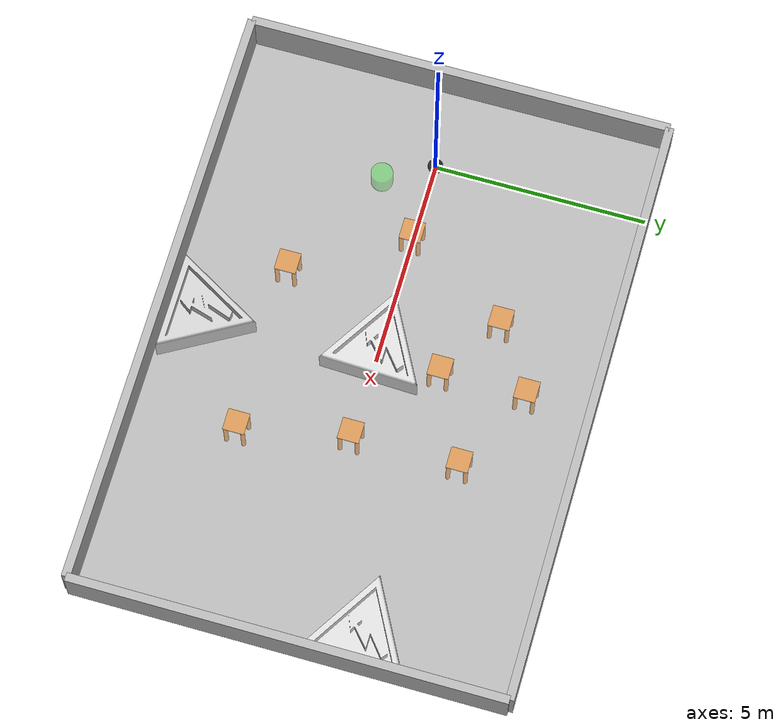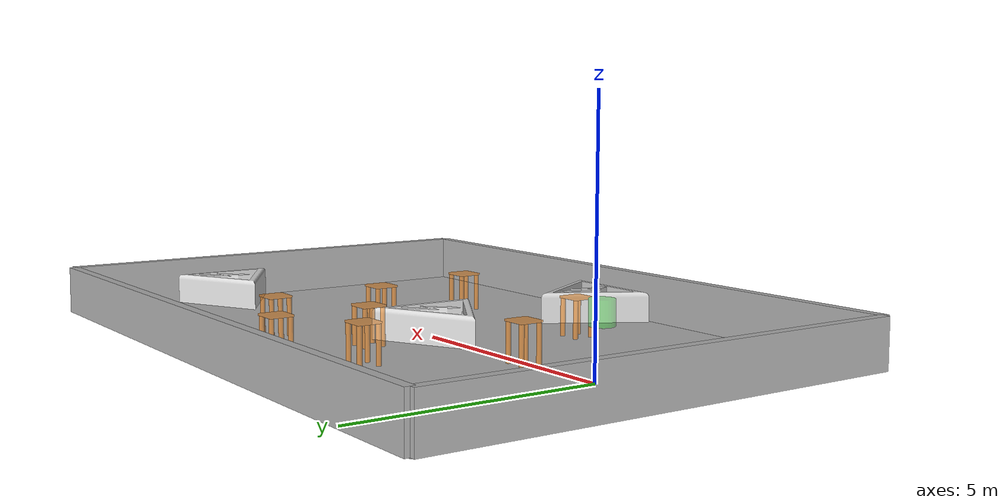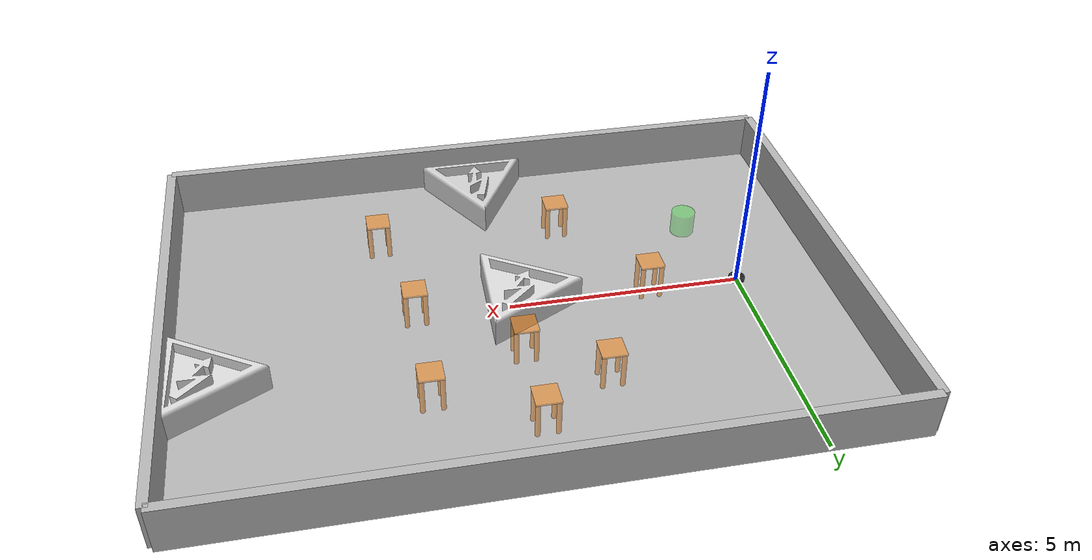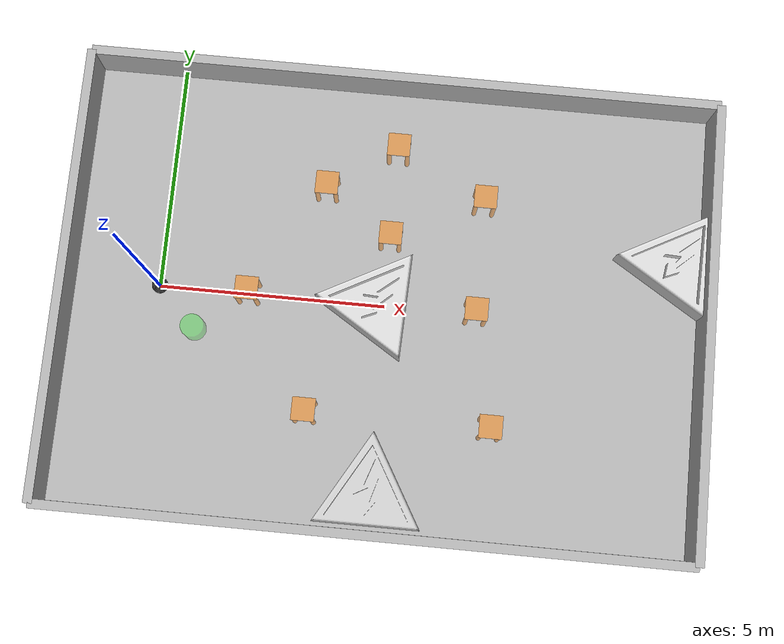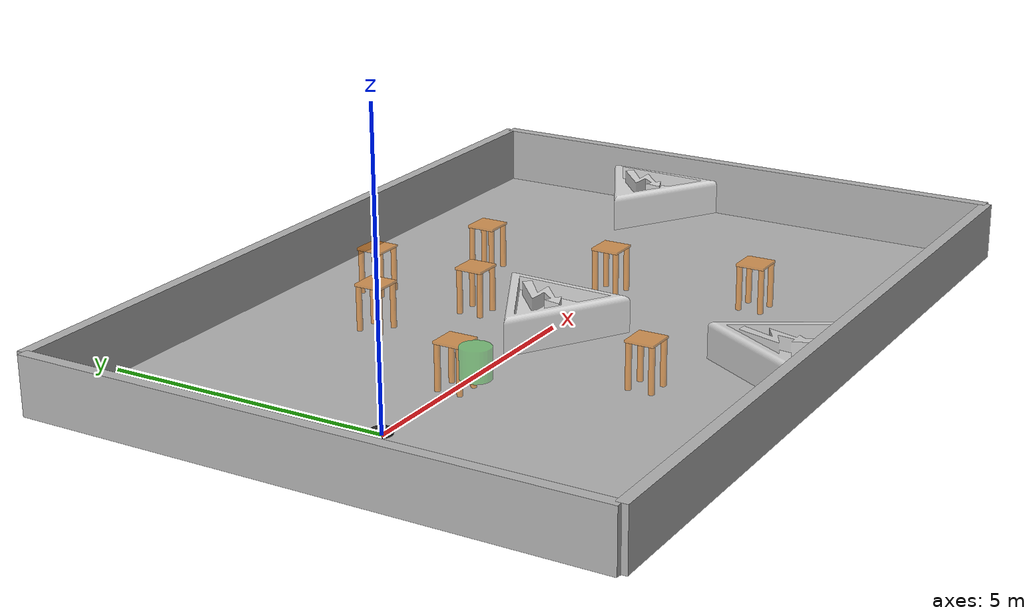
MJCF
<mujoco model="jackal_safe_navigation">
	<compiler angle="radian" meshdir="meshes/" />

    <size njmax="3000" nconmax="1000" />
    <option gravity="0 0 -9.8"/>
	<option timestep="0.002">
		<flag warmstart="enable"></flag>
	</option>

    <default>
        <geom condim="6" density="5" rgba="0.7 0.7 0.7 1" size=".05" type="sphere"/>
        <joint damping=".001"/>
        <site size="0.032" type="sphere"/>
        <velocity ctrlrange="-1 1" ctrllimited="true" forcerange="-1 1" forcelimited="true"/>
    </default>

    <asset>
        <!--Meshes-->
        <mesh name="base" file="tbot.stl" />
        <mesh name="triangle_mesh" file="triangle.stl"/>
        <!--mesh name="person" file="person3.stl" /-->

        <!--Textures-->
        <texture name="floor_tex"   type="2d" builtin="checker" rgb1="0.7 0.7 0.7" rgb2="0.9 0.9 0.9" width="100" height="100" />

        <!--Materials-->
        <material name="floor_mat" texture="floor_tex" shininess="0.3" texrepeat="7 5" specular="0.5" reflectance="0.2" />
        <material name="wall_mat" rgba="0.7 0.7 0.7 1" shininess="0.8" specular="0.7" reflectance="0.5" />
        <material name="bench_mat" texture="floor_tex" shininess="0.1" specular="0.5" reflectance="0.2"/>
    </asset>

	<worldbody>
		<light directional="true" ambient="0.2 0.2 0.2" diffuse="0.4 0.4 0.4" specular="0.1 0.1 0.1" castshadow="false" pos="0 0 4" dir="0 0 -1" name="light0" />

        <!-- Floor Property -->
        <geom name='floor' material="floor_mat" pos='5 0 0' size='7.0 5.0 0.1'  type='plane' condim="3"/>

        <!-- Wall Property -->
        <geom name='wall1' material="wall_mat" pos='5.0 5 0.5' size='7 0.1 0.5'  type='box' condim="6" group="2"/>
        <geom name='wall2' material="wall_mat" pos='5.0 -5 0.5' size='7 0.1 0.5'  type='box' condim="6" group="2"/>
        <geom name='wall3' material="wall_mat" pos='12 0 0.5' size='0.1 5 0.5'  type='box' condim="6" group="2"/>
        <geom name='wall4' material="wall_mat" pos='-2.0 0 0.5' size='0.1 5 0.5' type='box' condim="6" group="2"/>

		<!-- camera: front view -->
		<camera mode="fixed" name="frontview" pos="3.0 0 1.85" quat="0.56 0.43 0.43 0.56"/>

		<!-- Robot -->
		<body name="robot" pos="0 0 0.06344">
            <site name="robot" pos="0 0 0"/>
            <joint type="free" name="robot" damping="0"/>

            <geom pos="0 0 0" quat="1 0 0 0" type="mesh" contype="0" conaffinity="0" group="1" rgba="0.15 0.15 0.15 1" mesh="base"/>

            <geom name="robot" size="0.18 0.2" pos="0 0 0.15" type="cylinder" rgba="0.2 0.2 0.2 1" group="5" mass="4.0"/>

            <body name="left" pos="0.0 0.1 0.0345">
                <joint type="hinge" name="left" axis="0 1 0"/>
                <geom type="cylinder" name="left" size="0.098 0.02" quat="0.707107 0.707107 0 0" rgba="0.2 0.2 0.2 0" group="1" condim="4" mass=".5"/>
            </body>

            <body name="right" pos="0.0 -0.1 0.0345">
                <joint type="hinge" name="right" axis="0 1 0"/>
                <geom type="cylinder" name="right" size="0.098 0.02" quat="0.707107 0.707107 0 0" rgba="0.2 0.2 0.2 0" group="1" condim="4" mass=".5"/>
            </body>

            <body name="front" pos="0.131 0 -0.0155">
                <joint name="front" type="ball"/>
                <geom name="front" size="0.048" group="1" mass=".5"/>
            </body>
            <body name="rear" pos="-0.131 0 -0.0155">
                <joint name="rear" type="ball"/>
                <geom name="rear" size="0.048" group="1" mass=".5"/>
            </body>
		</body>

    <body name="chair" pos="2 0 0.4">
        <joint type="free" name="chair" damping="0"/>
        <!-- Top square of the chair -->
        <body name="top_square" pos="0 0 0.4">
            <geom type="box" size="0.25 0.25 0.02" rgba="1 .5 0 0.5" mass="2" group="2"/>
        </body>
        <!-- Leg 1 -->
        <body name="leg1" pos="-0.2 -0.2 0">
            <joint name="leg1_joint" type="ball" range="0 0"/>
            <geom type="cylinder" size="0.05 0.4" rgba="1 .5 0 0.5" mass="0.5" group="2"/>
        </body>
        <!-- Leg 2 -->
        <body name="leg2" pos="0.2 -0.2 0">
            <joint name="leg2_joint" type="ball" range="0 0"/>
            <geom type="cylinder" size="0.05 0.4" rgba="1 .5 0 0.5" mass="0.5" group="2"/>
        </body>
        <!-- Leg 3 -->
        <body name="leg3" pos="-0.2 0.2 0">
            <joint name="leg3_joint" type="ball" range="0 0"/>
            <geom type="cylinder" size="0.05 0.4" rgba="1 .5 0 0.5" mass="0.5" group="2"/>
        </body>
        <!-- Leg 4 -->
        <body name="leg4" pos="0.2 0.2 0">
            <joint name="leg4_joint" type="ball" range="0 0"/>
            <geom type="cylinder" size="0.05 0.4" rgba="1 .5 0 0.5" mass="0.5" group="2"/>
        </body>
    </body>

    <body name="chair2" pos="3.5 -2.5 0.4">
        <joint type="free" name="chair2" damping="0"/>
        <!-- Top square of the chair -->
        <body name="top_square2" pos="0 0 0.4">
            <geom type="box" size="0.25 0.25 0.02" rgba="1 .5 0 0.5" mass="2" group="2"/>
        </body>
        <!-- Leg 1 -->
        <body name="leg12" pos="-0.2 -0.2 0">
            <joint name="leg12_joint" type="ball" range="0 0"/>
            <geom type="cylinder" size="0.05 0.4" rgba="1 .5 0 0.5" mass="0.5" group="2"/>
        </body>
        <!-- Leg 2 -->
        <body name="leg22" pos="0.2 -0.2 0">
            <joint name="leg22_joint" type="ball" range="0 0"/>
            <geom type="cylinder" size="0.05 0.4" rgba="1 .5 0 0.5" mass="0.5" group="2"/>
        </body>
        <!-- Leg 3 -->
        <body name="leg32" pos="-0.2 0.2 0">
            <joint name="leg32_joint" type="ball" range="0 0"/>
            <geom type="cylinder" size="0.05 0.4" rgba="1 .5 0 0.5" mass="0.5" group="2"/>
        </body>
        <!-- Leg 4 -->
        <body name="leg42" pos="0.2 0.2 0">
            <joint name="leg42_joint" type="ball" range="0 0"/>
            <geom type="cylinder" size="0.05 0.4" rgba="1 .5 0 0.5" mass="0.5" group="2"/>
        </body>
    </body>

    <body name="chair3" pos="3.5 2.5 0.4">
        <joint type="free" name="chair3" damping="0"/>
        <!-- Top square of the chair -->
        <body name="top_square3" pos="0 0 0.4">
            <geom type="box" size="0.25 0.25 0.02" rgba="1 .5 0 0.5" mass="2" group="2"/>
        </body>
        <!-- Leg 1 -->
        <body name="leg13" pos="-0.2 -0.2 0">
            <joint name="leg13_joint" type="ball" range="0 0"/>
            <geom type="cylinder" size="0.05 0.4" rgba="1 .5 0 0.5" mass="0.5" group="2"/>
        </body>
        <!-- Leg 2 -->
        <body name="leg23" pos="0.2 -0.2 0">
            <joint name="leg23_joint" type="ball" range="0 0"/>
            <geom type="cylinder" size="0.05 0.4" rgba="1 .5 0 0.5" mass="0.5" group="2"/>
        </body>
        <!-- Leg 3 -->
        <body name="leg33" pos="-0.2 0.2 0">
            <joint name="leg33_joint" type="ball" range="0 0"/>
            <geom type="cylinder" size="0.05 0.4" rgba="1 .5 0 0.5" mass="0.5" group="2"/>
        </body>
        <!-- Leg 4 -->
        <body name="leg43" pos="0.2 0.2 0">
            <joint name="leg43_joint" type="ball" range="0 0"/>
            <geom type="cylinder" size="0.05 0.4" rgba="1 .5 0 0.5" mass="0.5" group="2"/>
        </body>
    </body>

    <body name="chair4" pos="7.5 -2.5 0.4">
        <joint type="free" name="chair4" damping="0"/>
        <!-- Top square of the chair -->
        <body name="top_square4" pos="0 0 0.4">
            <geom type="box" size="0.25 0.25 0.02" rgba="1 .5 0 0.5" mass="2" group="2"/>
        </body>
        <!-- Leg 1 -->
        <body name="leg14" pos="-0.2 -0.2 0">
            <joint name="leg14_joint" type="ball" range="0 0"/>
            <geom type="cylinder" size="0.05 0.4" rgba="1 .5 0 0.5" mass="0.5" group="2"/>
        </body>
        <!-- Leg 2 -->
        <body name="leg24" pos="0.2 -0.2 0">
            <joint name="leg24_joint" type="ball" range="0 0"/>
            <geom type="cylinder" size="0.05 0.4" rgba="1 .5 0 0.5" mass="0.5" group="2"/>
        </body>
        <!-- Leg 3 -->
        <body name="leg34" pos="-0.2 0.2 0">
            <joint name="leg34_joint" type="ball" range="0 0"/>
            <geom type="cylinder" size="0.05 0.4" rgba="1 .5 0 0.5" mass="0.5" group="2"/>
        </body>
        <!-- Leg 4 -->
        <body name="leg44" pos="0.2 0.2 0">
            <joint name="leg44_joint" type="ball" range="0 0"/>
            <geom type="cylinder" size="0.05 0.4" rgba="1 .5 0 0.5" mass="0.5" group="2"/>
        </body>
    </body>

    <body name="chair5" pos="5 3.5 0.4">
        <joint type="free" name="chair5" damping="0"/>
        <!-- Top square of the chair -->
        <body name="top_square5" pos="0 0 0.4">
            <geom type="box" size="0.25 0.25 0.02" rgba="1 .5 0 0.5" mass="2" group="2"/>
        </body>
        <!-- Leg 1 -->
        <body name="leg15" pos="-0.2 -0.2 0">
            <joint name="leg15_joint" type="ball" range="0 0"/>
            <geom type="cylinder" size="0.05 0.4" rgba="1 .5 0 0.5" mass="0.5" group="2"/>
        </body>
        <!-- Leg 2 -->
        <body name="leg25" pos="0.2 -0.2 0">
            <joint name="leg25_joint" type="ball" range="0 0"/>
            <geom type="cylinder" size="0.05 0.4" rgba="1 .5 0 0.5" mass="0.5" group="2"/>
        </body>
        <!-- Leg 3 -->
        <body name="leg35" pos="-0.2 0.2 0">
            <joint name="leg35_joint" type="ball" range="0 0"/>
            <geom type="cylinder" size="0.05 0.4" rgba="1 .5 0 0.5" mass="0.5" group="2"/>
        </body>
        <!-- Leg 4 -->
        <body name="leg45" pos="0.2 0.2 0">
            <joint name="leg45_joint" type="ball" range="0 0"/>
            <geom type="cylinder" size="0.05 0.4" rgba="1 .5 0 0.5" mass="0.5" group="2"/>
        </body>
    </body>

    <body name="chair6" pos="5 1.5 0.4">
        <joint type="free" name="chair6" damping="0"/>
        <!-- Top square of the chair -->
        <body name="top_square6" pos="0 0 0.4">
            <geom type="box" size="0.25 0.25 0.02" rgba="1 .5 0 0.5" mass="2" group="2"/>
        </body>
        <!-- Leg 1 -->
        <body name="leg16" pos="-0.2 -0.2 0">
            <joint name="leg16_joint" type="ball" range="0 0"/>
            <geom type="cylinder" size="0.05 0.4" rgba="1 .5 0 0.5" mass="0.5" group="2"/>
        </body>
        <!-- Leg 2 -->
        <body name="leg26" pos="0.2 -0.2 0">
            <joint name="leg26_joint" type="ball" range="0 0"/>
            <geom type="cylinder" size="0.05 0.4" rgba="1 .5 0 0.5" mass="0.5" group="2"/>
        </body>
        <!-- Leg 3 -->
        <body name="leg36" pos="-0.2 0.2 0">
            <joint name="leg36_joint" type="ball" range="0 0"/>
            <geom type="cylinder" size="0.05 0.4" rgba="1 .5 0 0.5" mass="0.5" group="2"/>
        </body>
        <!-- Leg 4 -->
        <body name="leg46" pos="0.2 0.2 0">
            <joint name="leg46_joint" type="ball" range="0 0"/>
            <geom type="cylinder" size="0.05 0.4" rgba="1 .5 0 0.5" mass="0.5" group="2"/>
        </body>
    </body>

    <body name="chair7" pos="7 2.5 0.4">
        <joint type="free" name="chair7" damping="0"/>
        <!-- Top square of the chair -->
        <body name="top_square7" pos="0 0 0.4">
            <geom type="box" size="0.25 0.25 0.02" rgba="1 .5 0 0.5" mass="2" group="2"/>
        </body>
        <!-- Leg 1 -->
        <body name="leg17" pos="-0.2 -0.2 0">
            <joint name="leg17_joint" type="ball" range="0 0"/>
            <geom type="cylinder" size="0.05 0.4" rgba="1 .5 0 0.5" mass="0.5" group="2"/>
        </body>
        <!-- Leg 2 -->
        <body name="leg27" pos="0.2 -0.2 0">
            <joint name="leg27_joint" type="ball" range="0 0"/>
            <geom type="cylinder" size="0.05 0.4" rgba="1 .5 0 0.5" mass="0.5" group="2"/>
        </body>
        <!-- Leg 3 -->
        <body name="leg37" pos="-0.2 0.2 0">
            <joint name="leg37_joint" type="ball" range="0 0"/>
            <geom type="cylinder" size="0.05 0.4" rgba="1 .5 0 0.5" mass="0.5" group="2"/>
        </body>
        <!-- Leg 4 -->
        <body name="leg47" pos="0.2 0.2 0">
            <joint name="leg47_joint" type="ball" range="0 0"/>
            <geom type="cylinder" size="0.05 0.4" rgba="1 .5 0 0.5" mass="0.5" group="2"/>
        </body>
    </body>

    <body name="chair8" pos="7 0 0.4">
        <joint type="free" name="chair8" damping="0"/>
        <!-- Top square of the chair -->
        <body name="top_square8" pos="0 0 0.4">
            <geom type="box" size="0.25 0.25 0.02" rgba="1 .5 0 0.5" mass="2" group="2"/>
        </body>
        <!-- Leg 1 -->
        <body name="leg18" pos="-0.2 -0.2 0">
            <joint name="leg18_joint" type="ball" range="0 0"/>
            <geom type="cylinder" size="0.05 0.4" rgba="1 .5 0 0.5" mass="0.5" group="2"/>
        </body>
        <!-- Leg 2 -->
        <body name="leg28" pos="0.2 -0.2 0">
            <joint name="leg28_joint" type="ball" range="0 0"/>
            <geom type="cylinder" size="0.05 0.4" rgba="1 .5 0 0.5" mass="0.5" group="2"/>
        </body>
        <!-- Leg 3 -->
        <body name="leg38" pos="-0.2 0.2 0">
            <joint name="leg38_joint" type="ball" range="0 0"/>
            <geom type="cylinder" size="0.05 0.4" rgba="1 .5 0 0.5" mass="0.5" group="2"/>
        </body>
        <!-- Leg 4 -->
        <body name="leg48" pos="0.2 0.2 0">
            <joint name="leg48_joint" type="ball" range="0 0"/>
            <geom type="cylinder" size="0.05 0.4" rgba="1 .5 0 0.5" mass="0.5" group="2"/>
        </body>
    </body>

        <body name="triangle" pos="6.2 -2.8 0">
            <joint type="free"/>
            <geom type="mesh" mesh="triangle_mesh" rgba="0.8 0.8 0.8 1" quat="0.0 0.0 0.0 1.0" mass="1" group="2"/>
        </body>

        <body name="triangle2" pos="6.5 0.5 0">
            <joint type="free"/>
            <geom type="mesh" mesh="triangle_mesh" rgba="0.85 0.85 0.85 1" quat="0.2763556485641138 0.0 0.0 0.961055438310771" mass="1" group="2"/>
        </body>

        <body name="triangle3" pos="13 2 0">
            <joint type="free"/>
            <geom type="mesh" mesh="triangle_mesh" rgba="0.85 0.85 0.85 1" quat="0.2763556485641138 0.0 0.0 0.961055438310771" mass="1" group="2"/>
        </body>

        <!-- goal -->
        <body name="goal" pos="1.0 -1.0 1.0">
            <site name="goal" pos="0 0 0" rgba="0 0 1 0"/>
            <joint type="free" name="goal" frictionloss="0" damping="0" />
            <geom type="cylinder" size="0.25 0.25 0.25" contype="0" conaffinity="0" group="1" rgba="0 0.9 0 0.3" mass="0.1"/>
        </body>

	</worldbody>

    <sensor>
        <!-- Used for observation -->
        <accelerometer site="robot" name="accelerometer"/>
        <velocimeter site="robot" name="velocimeter"/>
        <gyro site="robot" name="gyro"/>
    </sensor>

    <!--ACTUATORS-->
    <actuator>

        <motor gear="0.7 0 0 0 0 0" joint="left" name="left"/>
        <motor gear="0.7 0 0 0 0 0" joint="right" name="right"/>

    </actuator>
</mujoco>
